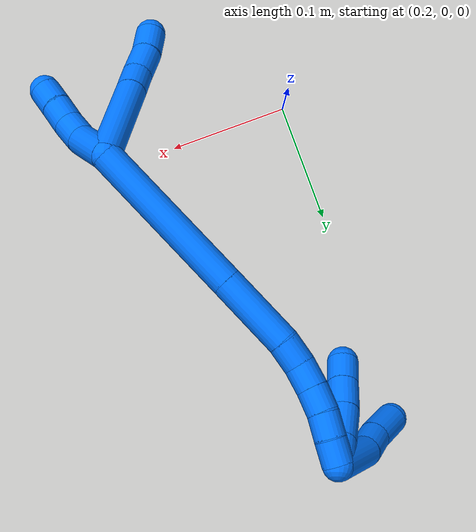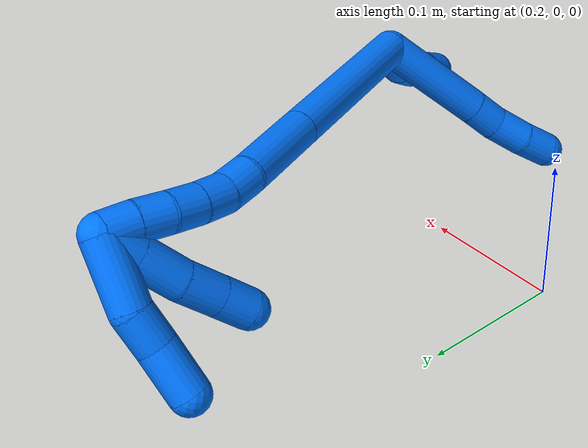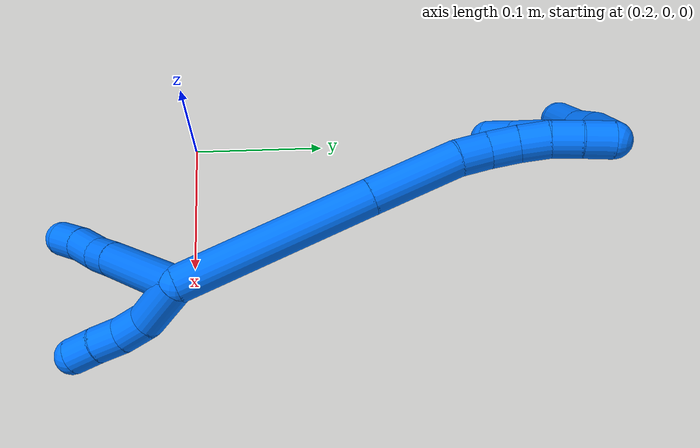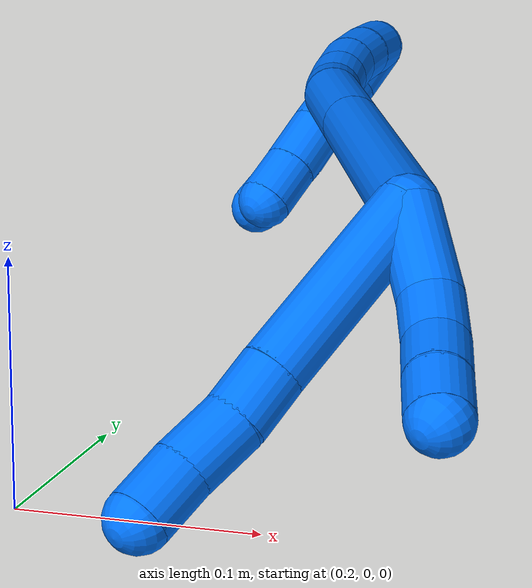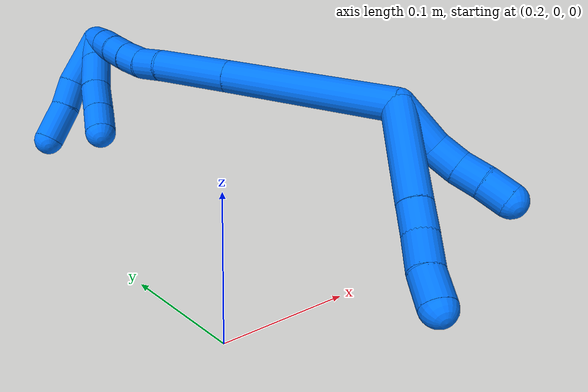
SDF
<sdf version="1.7">
 <world name="default">
  <model name="14">
   <static>0</static>
   <link name="14">
    <collision name="collision-cylinder-e_1_2_8">
     <pose>-0.000652 0.015382 -0.036229 -2.74008 -0.016557 0.08132</pose>
     <geometry><cylinder><radius>0.0125</radius><length>0.07873</length></cylinder></geometry>
     <surface>
      <friction><ode><mu>1.16</mu><mu2>1.16</mu2><slip1>0</slip1><slip2>0</slip2></ode></friction>
      <contact><ode><kp>1e+06</kp><kd>1</kd><max_vel>0</max_vel><min_depth>0.001</min_depth></ode></contact>
     </surface>
    </collision>
    <visual name="visual-cylinder-e_1_2_8">
     <pose>-0.000652 0.015382 -0.036229 -2.74008 -0.016557 0.08132</pose>
     <geometry><cylinder><radius>0.0125</radius><length>0.07873</length></cylinder></geometry>
     <material><ambient>0 0.462745 1 1</ambient></material>
    </visual>
    <collision name="collision-cylinder-e_2_8_9">
     <pose>-0.00117 0.035323 -0.08266 -2.72131 0.011963 -0.056073</pose>
     <geometry><cylinder><radius>0.0125</radius><length>0.022349</length></cylinder></geometry>
     <surface>
      <friction><ode><mu>1.16</mu><mu2>1.16</mu2><slip1>0</slip1><slip2>0</slip2></ode></friction>
      <contact><ode><kp>1e+06</kp><kd>1</kd><max_vel>0</max_vel><min_depth>0.001</min_depth></ode></contact>
     </surface>
    </collision>
    <visual name="visual-cylinder-e_2_8_9">
     <pose>-0.00117 0.035323 -0.08266 -2.72131 0.011963 -0.056073</pose>
     <geometry><cylinder><radius>0.0125</radius><length>0.022349</length></cylinder></geometry>
     <material><ambient>0 0.462745 1 1</ambient></material>
    </visual>
    <collision name="collision-cylinder-e_3_9_10">
     <pose>-0.002413 0.043852 -0.104938 -2.82401 -0.107861 0.650263</pose>
     <geometry><cylinder><radius>0.0125</radius><length>0.025575</length></cylinder></geometry>
     <surface>
      <friction><ode><mu>1.16</mu><mu2>1.16</mu2><slip1>0</slip1><slip2>0</slip2></ode></friction>
      <contact><ode><kp>1e+06</kp><kd>1</kd><max_vel>0</max_vel><min_depth>0.001</min_depth></ode></contact>
     </surface>
    </collision>
    <visual name="visual-cylinder-e_3_9_10">
     <pose>-0.002413 0.043852 -0.104938 -2.82401 -0.107861 0.650263</pose>
     <geometry><cylinder><radius>0.0125</radius><length>0.025575</length></cylinder></geometry>
     <material><ambient>0 0.462745 1 1</ambient></material>
    </visual>
    <collision name="collision-cylinder-e_4_10_6">
     <pose>-0.003559 0.050624 -0.128345 -2.89915 0.019749 -0.161769</pose>
     <geometry><cylinder><radius>0.0125</radius><length>0.023347</length></cylinder></geometry>
     <surface>
      <friction><ode><mu>1.16</mu><mu2>1.16</mu2><slip1>0</slip1><slip2>0</slip2></ode></friction>
      <contact><ode><kp>1e+06</kp><kd>1</kd><max_vel>0</max_vel><min_depth>0.001</min_depth></ode></contact>
     </surface>
    </collision>
    <visual name="visual-cylinder-e_4_10_6">
     <pose>-0.003559 0.050624 -0.128345 -2.89915 0.019749 -0.161769</pose>
     <geometry><cylinder><radius>0.0125</radius><length>0.023347</length></cylinder></geometry>
     <material><ambient>0 0.462745 1 1</ambient></material>
    </visual>
    <collision name="collision-cylinder-e_1_2_11">
     <pose>0.014148 0.006371 -0.01123 -2.62555 0.831059 -2.06352</pose>
     <geometry><cylinder><radius>0.0125</radius><length>0.038308</length></cylinder></geometry>
     <surface>
      <friction><ode><mu>1.16</mu><mu2>1.16</mu2><slip1>0</slip1><slip2>0</slip2></ode></friction>
      <contact><ode><kp>1e+06</kp><kd>1</kd><max_vel>0</max_vel><min_depth>0.001</min_depth></ode></contact>
     </surface>
    </collision>
    <visual name="visual-cylinder-e_1_2_11">
     <pose>0.014148 0.006371 -0.01123 -2.62555 0.831059 -2.06352</pose>
     <geometry><cylinder><radius>0.0125</radius><length>0.038308</length></cylinder></geometry>
     <material><ambient>0 0.462745 1 1</ambient></material>
    </visual>
    <collision name="collision-cylinder-e_2_11_12">
     <pose>0.035373 0.01351 -0.030574 -3.04724 0.715078 -2.89018</pose>
     <geometry><cylinder><radius>0.0125</radius><length>0.021586</length></cylinder></geometry>
     <surface>
      <friction><ode><mu>1.16</mu><mu2>1.16</mu2><slip1>0</slip1><slip2>0</slip2></ode></friction>
      <contact><ode><kp>1e+06</kp><kd>1</kd><max_vel>0</max_vel><min_depth>0.001</min_depth></ode></contact>
     </surface>
    </collision>
    <visual name="visual-cylinder-e_2_11_12">
     <pose>0.035373 0.01351 -0.030574 -3.04724 0.715078 -2.89018</pose>
     <geometry><cylinder><radius>0.0125</radius><length>0.021586</length></cylinder></geometry>
     <material><ambient>0 0.462745 1 1</ambient></material>
    </visual>
    <collision name="collision-cylinder-e_3_12_13">
     <pose>0.04832 0.013161 -0.046731 3.0036 0.625881 2.72079</pose>
     <geometry><cylinder><radius>0.0125</radius><length>0.020042</length></cylinder></geometry>
     <surface>
      <friction><ode><mu>1.16</mu><mu2>1.16</mu2><slip1>0</slip1><slip2>0</slip2></ode></friction>
      <contact><ode><kp>1e+06</kp><kd>1</kd><max_vel>0</max_vel><min_depth>0.001</min_depth></ode></contact>
     </surface>
    </collision>
    <visual name="visual-cylinder-e_3_12_13">
     <pose>0.04832 0.013161 -0.046731 3.0036 0.625881 2.72079</pose>
     <geometry><cylinder><radius>0.0125</radius><length>0.020042</length></cylinder></geometry>
     <material><ambient>0 0.462745 1 1</ambient></material>
    </visual>
    <collision name="collision-cylinder-e_4_13_5">
     <pose>0.060285 0.011749 -0.062738 3.10455 0.652877 3.03228</pose>
     <geometry><cylinder><radius>0.0125</radius><length>0.020063</length></cylinder></geometry>
     <surface>
      <friction><ode><mu>1.16</mu><mu2>1.16</mu2><slip1>0</slip1><slip2>0</slip2></ode></friction>
      <contact><ode><kp>1e+06</kp><kd>1</kd><max_vel>0</max_vel><min_depth>0.001</min_depth></ode></contact>
     </surface>
    </collision>
    <visual name="visual-cylinder-e_4_13_5">
     <pose>0.060285 0.011749 -0.062738 3.10455 0.652877 3.03228</pose>
     <geometry><cylinder><radius>0.0125</radius><length>0.020063</length></cylinder></geometry>
     <material><ambient>0 0.462745 1 1</ambient></material>
    </visual>
    <collision name="collision-cylinder-e_1_2_14">
     <pose>-0.042826 0.028292 0.044326 -0.568085 -0.683468 0.206935</pose>
     <geometry><cylinder><radius>0.0125</radius><length>0.135635</length></cylinder></geometry>
     <surface>
      <friction><ode><mu>1.16</mu><mu2>1.16</mu2><slip1>0</slip1><slip2>0</slip2></ode></friction>
      <contact><ode><kp>1e+06</kp><kd>1</kd><max_vel>0</max_vel><min_depth>0.001</min_depth></ode></contact>
     </surface>
    </collision>
    <visual name="visual-cylinder-e_1_2_14">
     <pose>-0.042826 0.028292 0.044326 -0.568085 -0.683468 0.206935</pose>
     <geometry><cylinder><radius>0.0125</radius><length>0.135635</length></cylinder></geometry>
     <material><ambient>0 0.462745 1 1</ambient></material>
    </visual>
    <collision name="collision-cylinder-e_2_14_15">
     <pose>-0.105209 0.069781 0.109069 -0.57382 -0.67744 0.207147</pose>
     <geometry><cylinder><radius>0.0125</radius><length>0.062404</length></cylinder></geometry>
     <surface>
      <friction><ode><mu>1.16</mu><mu2>1.16</mu2><slip1>0</slip1><slip2>0</slip2></ode></friction>
      <contact><ode><kp>1e+06</kp><kd>1</kd><max_vel>0</max_vel><min_depth>0.001</min_depth></ode></contact>
     </surface>
    </collision>
    <visual name="visual-cylinder-e_2_14_15">
     <pose>-0.105209 0.069781 0.109069 -0.57382 -0.67744 0.207147</pose>
     <geometry><cylinder><radius>0.0125</radius><length>0.062404</length></cylinder></geometry>
     <material><ambient>0 0.462745 1 1</ambient></material>
    </visual>
    <collision name="collision-cylinder-e_3_15_16">
     <pose>-0.13008 0.088203 0.13727 -0.5912 -0.515703 0.160274</pose>
     <geometry><cylinder><radius>0.0125</radius><length>0.02155</length></cylinder></geometry>
     <surface>
      <friction><ode><mu>1.16</mu><mu2>1.16</mu2><slip1>0</slip1><slip2>0</slip2></ode></friction>
      <contact><ode><kp>1e+06</kp><kd>1</kd><max_vel>0</max_vel><min_depth>0.001</min_depth></ode></contact>
     </surface>
    </collision>
    <visual name="visual-cylinder-e_3_15_16">
     <pose>-0.13008 0.088203 0.13727 -0.5912 -0.515703 0.160274</pose>
     <geometry><cylinder><radius>0.0125</radius><length>0.02155</length></cylinder></geometry>
     <material><ambient>0 0.462745 1 1</ambient></material>
    </visual>
    <collision name="collision-cylinder-e_4_16_17">
     <pose>-0.139867 0.096565 0.153533 -0.354341 -0.459399 0.083683</pose>
     <geometry><cylinder><radius>0.0125</radius><length>0.020176</length></cylinder></geometry>
     <surface>
      <friction><ode><mu>1.16</mu><mu2>1.16</mu2><slip1>0</slip1><slip2>0</slip2></ode></friction>
      <contact><ode><kp>1e+06</kp><kd>1</kd><max_vel>0</max_vel><min_depth>0.001</min_depth></ode></contact>
     </surface>
    </collision>
    <visual name="visual-cylinder-e_4_16_17">
     <pose>-0.139867 0.096565 0.153533 -0.354341 -0.459399 0.083683</pose>
     <geometry><cylinder><radius>0.0125</radius><length>0.020176</length></cylinder></geometry>
     <material><ambient>0 0.462745 1 1</ambient></material>
    </visual>
    <collision name="collision-cylinder-e_5_17_18">
     <pose>-0.148179 0.102375 0.170875 -0.292939 -0.393166 0.058744</pose>
     <geometry><cylinder><radius>0.0125</radius><length>0.020041</length></cylinder></geometry>
     <surface>
      <friction><ode><mu>1.16</mu><mu2>1.16</mu2><slip1>0</slip1><slip2>0</slip2></ode></friction>
      <contact><ode><kp>1e+06</kp><kd>1</kd><max_vel>0</max_vel><min_depth>0.001</min_depth></ode></contact>
     </surface>
    </collision>
    <visual name="visual-cylinder-e_5_17_18">
     <pose>-0.148179 0.102375 0.170875 -0.292939 -0.393166 0.058744</pose>
     <geometry><cylinder><radius>0.0125</radius><length>0.020041</length></cylinder></geometry>
     <material><ambient>0 0.462745 1 1</ambient></material>
    </visual>
    <collision name="collision-cylinder-e_6_18_19">
     <pose>-0.154437 0.108044 0.189064 -0.310756 -0.242085 0.038102</pose>
     <geometry><cylinder><radius>0.0125</radius><length>0.020184</length></cylinder></geometry>
     <surface>
      <friction><ode><mu>1.16</mu><mu2>1.16</mu2><slip1>0</slip1><slip2>0</slip2></ode></friction>
      <contact><ode><kp>1e+06</kp><kd>1</kd><max_vel>0</max_vel><min_depth>0.001</min_depth></ode></contact>
     </surface>
    </collision>
    <visual name="visual-cylinder-e_6_18_19">
     <pose>-0.154437 0.108044 0.189064 -0.310756 -0.242085 0.038102</pose>
     <geometry><cylinder><radius>0.0125</radius><length>0.020184</length></cylinder></geometry>
     <material><ambient>0 0.462745 1 1</ambient></material>
    </visual>
    <collision name="collision-cylinder-e_7_19_1">
     <pose>-0.159171 0.114854 0.207348 -0.402711 -0.233431 0.047857</pose>
     <geometry><cylinder><radius>0.0125</radius><length>0.02001</length></cylinder></geometry>
     <surface>
      <friction><ode><mu>1.16</mu><mu2>1.16</mu2><slip1>0</slip1><slip2>0</slip2></ode></friction>
      <contact><ode><kp>1e+06</kp><kd>1</kd><max_vel>0</max_vel><min_depth>0.001</min_depth></ode></contact>
     </surface>
    </collision>
    <visual name="visual-cylinder-e_7_19_1">
     <pose>-0.159171 0.114854 0.207348 -0.402711 -0.233431 0.047857</pose>
     <geometry><cylinder><radius>0.0125</radius><length>0.02001</length></cylinder></geometry>
     <material><ambient>0 0.462745 1 1</ambient></material>
    </visual>
    <collision name="collision-cylinder-e_1_1_20">
     <pose>-0.16077 0.123391 0.205938 -2.71415 0.062701 -0.287006</pose>
     <geometry><cylinder><radius>0.0125</radius><length>0.022824</length></cylinder></geometry>
     <surface>
      <friction><ode><mu>1.16</mu><mu2>1.16</mu2><slip1>0</slip1><slip2>0</slip2></ode></friction>
      <contact><ode><kp>1e+06</kp><kd>1</kd><max_vel>0</max_vel><min_depth>0.001</min_depth></ode></contact>
     </surface>
    </collision>
    <visual name="visual-cylinder-e_1_1_20">
     <pose>-0.16077 0.123391 0.205938 -2.71415 0.062701 -0.287006</pose>
     <geometry><cylinder><radius>0.0125</radius><length>0.022824</length></cylinder></geometry>
     <material><ambient>0 0.462745 1 1</ambient></material>
    </visual>
    <collision name="collision-cylinder-e_2_20_21">
     <pose>-0.159302 0.13414 0.181969 -2.7245 0.050545 -0.237765</pose>
     <geometry><cylinder><radius>0.0125</radius><length>0.029799</length></cylinder></geometry>
     <surface>
      <friction><ode><mu>1.16</mu><mu2>1.16</mu2><slip1>0</slip1><slip2>0</slip2></ode></friction>
      <contact><ode><kp>1e+06</kp><kd>1</kd><max_vel>0</max_vel><min_depth>0.001</min_depth></ode></contact>
     </surface>
    </collision>
    <visual name="visual-cylinder-e_2_20_21">
     <pose>-0.159302 0.13414 0.181969 -2.7245 0.050545 -0.237765</pose>
     <geometry><cylinder><radius>0.0125</radius><length>0.029799</length></cylinder></geometry>
     <material><ambient>0 0.462745 1 1</ambient></material>
    </visual>
    <collision name="collision-cylinder-e_3_21_22">
     <pose>-0.15689 0.144083 0.15645 -2.82414 0.131582 -0.780922</pose>
     <geometry><cylinder><radius>0.0125</radius><length>0.025299</length></cylinder></geometry>
     <surface>
      <friction><ode><mu>1.16</mu><mu2>1.16</mu2><slip1>0</slip1><slip2>0</slip2></ode></friction>
      <contact><ode><kp>1e+06</kp><kd>1</kd><max_vel>0</max_vel><min_depth>0.001</min_depth></ode></contact>
     </surface>
    </collision>
    <visual name="visual-cylinder-e_3_21_22">
     <pose>-0.15689 0.144083 0.15645 -2.82414 0.131582 -0.780922</pose>
     <geometry><cylinder><radius>0.0125</radius><length>0.025299</length></cylinder></geometry>
     <material><ambient>0 0.462745 1 1</ambient></material>
    </visual>
    <collision name="collision-cylinder-e_4_22_4">
     <pose>-0.154007 0.151433 0.134118 -2.82306 0.111056 -0.666295</pose>
     <geometry><cylinder><radius>0.0125</radius><length>0.022078</length></cylinder></geometry>
     <surface>
      <friction><ode><mu>1.16</mu><mu2>1.16</mu2><slip1>0</slip1><slip2>0</slip2></ode></friction>
      <contact><ode><kp>1e+06</kp><kd>1</kd><max_vel>0</max_vel><min_depth>0.001</min_depth></ode></contact>
     </surface>
    </collision>
    <visual name="visual-cylinder-e_4_22_4">
     <pose>-0.154007 0.151433 0.134118 -2.82306 0.111056 -0.666295</pose>
     <geometry><cylinder><radius>0.0125</radius><length>0.022078</length></cylinder></geometry>
     <material><ambient>0 0.462745 1 1</ambient></material>
    </visual>
    <collision name="collision-cylinder-e_1_1_23">
     <pose>-0.167068 0.137357 0.206206 -2.06614 -0.257031 0.426803</pose>
     <geometry><cylinder><radius>0.0125</radius><length>0.043926</length></cylinder></geometry>
     <surface>
      <friction><ode><mu>1.16</mu><mu2>1.16</mu2><slip1>0</slip1><slip2>0</slip2></ode></friction>
      <contact><ode><kp>1e+06</kp><kd>1</kd><max_vel>0</max_vel><min_depth>0.001</min_depth></ode></contact>
     </surface>
    </collision>
    <visual name="visual-cylinder-e_1_1_23">
     <pose>-0.167068 0.137357 0.206206 -2.06614 -0.257031 0.426803</pose>
     <geometry><cylinder><radius>0.0125</radius><length>0.043926</length></cylinder></geometry>
     <material><ambient>0 0.462745 1 1</ambient></material>
    </visual>
    <collision name="collision-cylinder-e_2_23_24">
     <pose>-0.17392 0.164614 0.188061 -2.32497 -0.107497 0.247444</pose>
     <geometry><cylinder><radius>0.0125</radius><length>0.023648</length></cylinder></geometry>
     <surface>
      <friction><ode><mu>1.16</mu><mu2>1.16</mu2><slip1>0</slip1><slip2>0</slip2></ode></friction>
      <contact><ode><kp>1e+06</kp><kd>1</kd><max_vel>0</max_vel><min_depth>0.001</min_depth></ode></contact>
     </surface>
    </collision>
    <visual name="visual-cylinder-e_2_23_24">
     <pose>-0.17392 0.164614 0.188061 -2.32497 -0.107497 0.247444</pose>
     <geometry><cylinder><radius>0.0125</radius><length>0.023648</length></cylinder></geometry>
     <material><ambient>0 0.462745 1 1</ambient></material>
    </visual>
    <collision name="collision-cylinder-e_3_24_3">
     <pose>-0.179271 0.184914 0.169593 -2.29695 -0.254511 0.554783</pose>
     <geometry><cylinder><radius>0.0125</radius><length>0.032426</length></cylinder></geometry>
     <surface>
      <friction><ode><mu>1.16</mu><mu2>1.16</mu2><slip1>0</slip1><slip2>0</slip2></ode></friction>
      <contact><ode><kp>1e+06</kp><kd>1</kd><max_vel>0</max_vel><min_depth>0.001</min_depth></ode></contact>
     </surface>
    </collision>
    <visual name="visual-cylinder-e_3_24_3">
     <pose>-0.179271 0.184914 0.169593 -2.29695 -0.254511 0.554783</pose>
     <geometry><cylinder><radius>0.0125</radius><length>0.032426</length></cylinder></geometry>
     <material><ambient>0 0.462745 1 1</ambient></material>
    </visual>
    <collision name="collision-sphere-3">
     <pose>-0.183353 0.196647 0.159174 0 -0 0</pose>
     <geometry><sphere><radius>0.0125</radius></sphere></geometry>
     <surface>
      <friction><ode><mu>1.16</mu><mu2>1.16</mu2><slip1>0</slip1><slip2>0</slip2></ode></friction>
      <contact><ode><kp>1e+06</kp><kd>1</kd><max_vel>0</max_vel><min_depth>0.001</min_depth></ode></contact>
     </surface>
    </collision>
    <visual name="visual-sphere-3">
     <pose>-0.183353 0.196647 0.159174 0 -0 0</pose>
     <geometry><sphere><radius>0.0125</radius></sphere></geometry>
     <material><ambient>0 0.462745 1 1</ambient></material>
    </visual>
    <collision name="collision-sphere-24">
     <pose>-0.175189 0.173182 0.180012 0 -0 0</pose>
     <geometry><sphere><radius>0.0125</radius></sphere></geometry>
     <surface>
      <friction><ode><mu>1.16</mu><mu2>1.16</mu2><slip1>0</slip1><slip2>0</slip2></ode></friction>
      <contact><ode><kp>1e+06</kp><kd>1</kd><max_vel>0</max_vel><min_depth>0.001</min_depth></ode></contact>
     </surface>
    </collision>
    <visual name="visual-sphere-24">
     <pose>-0.175189 0.173182 0.180012 0 -0 0</pose>
     <geometry><sphere><radius>0.0125</radius></sphere></geometry>
     <material><ambient>0 0.462745 1 1</ambient></material>
    </visual>
    <collision name="collision-sphere-23">
     <pose>-0.172652 0.156046 0.19611 0 -0 0</pose>
     <geometry><sphere><radius>0.0125</radius></sphere></geometry>
     <surface>
      <friction><ode><mu>1.16</mu><mu2>1.16</mu2><slip1>0</slip1><slip2>0</slip2></ode></friction>
      <contact><ode><kp>1e+06</kp><kd>1</kd><max_vel>0</max_vel><min_depth>0.001</min_depth></ode></contact>
     </surface>
    </collision>
    <visual name="visual-sphere-23">
     <pose>-0.172652 0.156046 0.19611 0 -0 0</pose>
     <geometry><sphere><radius>0.0125</radius></sphere></geometry>
     <material><ambient>0 0.462745 1 1</ambient></material>
    </visual>
    <collision name="collision-sphere-4">
     <pose>-0.152783 0.154869 0.123699 0 -0 0</pose>
     <geometry><sphere><radius>0.0125</radius></sphere></geometry>
     <surface>
      <friction><ode><mu>1.16</mu><mu2>1.16</mu2><slip1>0</slip1><slip2>0</slip2></ode></friction>
      <contact><ode><kp>1e+06</kp><kd>1</kd><max_vel>0</max_vel><min_depth>0.001</min_depth></ode></contact>
     </surface>
    </collision>
    <visual name="visual-sphere-4">
     <pose>-0.152783 0.154869 0.123699 0 -0 0</pose>
     <geometry><sphere><radius>0.0125</radius></sphere></geometry>
     <material><ambient>0 0.462745 1 1</ambient></material>
    </visual>
    <collision name="collision-sphere-22">
     <pose>-0.15523 0.147997 0.144537 0 -0 0</pose>
     <geometry><sphere><radius>0.0125</radius></sphere></geometry>
     <surface>
      <friction><ode><mu>1.16</mu><mu2>1.16</mu2><slip1>0</slip1><slip2>0</slip2></ode></friction>
      <contact><ode><kp>1e+06</kp><kd>1</kd><max_vel>0</max_vel><min_depth>0.001</min_depth></ode></contact>
     </surface>
    </collision>
    <visual name="visual-sphere-22">
     <pose>-0.15523 0.147997 0.144537 0 -0 0</pose>
     <geometry><sphere><radius>0.0125</radius></sphere></geometry>
     <material><ambient>0 0.462745 1 1</ambient></material>
    </visual>
    <collision name="collision-sphere-21">
     <pose>-0.15855 0.140169 0.168364 0 -0 0</pose>
     <geometry><sphere><radius>0.0125</radius></sphere></geometry>
     <surface>
      <friction><ode><mu>1.16</mu><mu2>1.16</mu2><slip1>0</slip1><slip2>0</slip2></ode></friction>
      <contact><ode><kp>1e+06</kp><kd>1</kd><max_vel>0</max_vel><min_depth>0.001</min_depth></ode></contact>
     </surface>
    </collision>
    <visual name="visual-sphere-21">
     <pose>-0.15855 0.140169 0.168364 0 -0 0</pose>
     <geometry><sphere><radius>0.0125</radius></sphere></geometry>
     <material><ambient>0 0.462745 1 1</ambient></material>
    </visual>
    <collision name="collision-sphere-20">
     <pose>-0.160055 0.128112 0.195574 0 -0 0</pose>
     <geometry><sphere><radius>0.0125</radius></sphere></geometry>
     <surface>
      <friction><ode><mu>1.16</mu><mu2>1.16</mu2><slip1>0</slip1><slip2>0</slip2></ode></friction>
      <contact><ode><kp>1e+06</kp><kd>1</kd><max_vel>0</max_vel><min_depth>0.001</min_depth></ode></contact>
     </surface>
    </collision>
    <visual name="visual-sphere-20">
     <pose>-0.160055 0.128112 0.195574 0 -0 0</pose>
     <geometry><sphere><radius>0.0125</radius></sphere></geometry>
     <material><ambient>0 0.462745 1 1</ambient></material>
    </visual>
    <collision name="collision-sphere-11">
     <pose>0.028296 0.012742 -0.022461 0 -0 0</pose>
     <geometry><sphere><radius>0.0125</radius></sphere></geometry>
     <surface>
      <friction><ode><mu>1.16</mu><mu2>1.16</mu2><slip1>0</slip1><slip2>0</slip2></ode></friction>
      <contact><ode><kp>1e+06</kp><kd>1</kd><max_vel>0</max_vel><min_depth>0.001</min_depth></ode></contact>
     </surface>
    </collision>
    <visual name="visual-sphere-11">
     <pose>0.028296 0.012742 -0.022461 0 -0 0</pose>
     <geometry><sphere><radius>0.0125</radius></sphere></geometry>
     <material><ambient>0 0.462745 1 1</ambient></material>
    </visual>
    <collision name="collision-sphere-6">
     <pose>-0.003328 0.053426 -0.139675 0 -0 0</pose>
     <geometry><sphere><radius>0.0125</radius></sphere></geometry>
     <surface>
      <friction><ode><mu>1.16</mu><mu2>1.16</mu2><slip1>0</slip1><slip2>0</slip2></ode></friction>
      <contact><ode><kp>1e+06</kp><kd>1</kd><max_vel>0</max_vel><min_depth>0.001</min_depth></ode></contact>
     </surface>
    </collision>
    <visual name="visual-sphere-6">
     <pose>-0.003328 0.053426 -0.139675 0 -0 0</pose>
     <geometry><sphere><radius>0.0125</radius></sphere></geometry>
     <material><ambient>0 0.462745 1 1</ambient></material>
    </visual>
    <collision name="collision-sphere-10">
     <pose>-0.003789 0.047822 -0.117016 0 -0 0</pose>
     <geometry><sphere><radius>0.0125</radius></sphere></geometry>
     <surface>
      <friction><ode><mu>1.16</mu><mu2>1.16</mu2><slip1>0</slip1><slip2>0</slip2></ode></friction>
      <contact><ode><kp>1e+06</kp><kd>1</kd><max_vel>0</max_vel><min_depth>0.001</min_depth></ode></contact>
     </surface>
    </collision>
    <visual name="visual-sphere-10">
     <pose>-0.003789 0.047822 -0.117016 0 -0 0</pose>
     <geometry><sphere><radius>0.0125</radius></sphere></geometry>
     <material><ambient>0 0.462745 1 1</ambient></material>
    </visual>
    <collision name="collision-sphere-9">
     <pose>-0.001036 0.039882 -0.092861 0 -0 0</pose>
     <geometry><sphere><radius>0.0125</radius></sphere></geometry>
     <surface>
      <friction><ode><mu>1.16</mu><mu2>1.16</mu2><slip1>0</slip1><slip2>0</slip2></ode></friction>
      <contact><ode><kp>1e+06</kp><kd>1</kd><max_vel>0</max_vel><min_depth>0.001</min_depth></ode></contact>
     </surface>
    </collision>
    <visual name="visual-sphere-9">
     <pose>-0.001036 0.039882 -0.092861 0 -0 0</pose>
     <geometry><sphere><radius>0.0125</radius></sphere></geometry>
     <material><ambient>0 0.462745 1 1</ambient></material>
    </visual>
    <collision name="collision-sphere-2">
     <geometry><sphere><radius>0.0125</radius></sphere></geometry>
     <surface>
      <friction><ode><mu>1.16</mu><mu2>1.16</mu2><slip1>0</slip1><slip2>0</slip2></ode></friction>
      <contact><ode><kp>1e+06</kp><kd>1</kd><max_vel>0</max_vel><min_depth>0.001</min_depth></ode></contact>
     </surface>
    </collision>
    <visual name="visual-sphere-2">
     <geometry><sphere><radius>0.0125</radius></sphere></geometry>
     <material><ambient>0 0.462745 1 1</ambient></material>
    </visual>
    <collision name="collision-sphere-19">
     <pose>-0.156856 0.111039 0.198393 0 -0 0</pose>
     <geometry><sphere><radius>0.0125</radius></sphere></geometry>
     <surface>
      <friction><ode><mu>1.16</mu><mu2>1.16</mu2><slip1>0</slip1><slip2>0</slip2></ode></friction>
      <contact><ode><kp>1e+06</kp><kd>1</kd><max_vel>0</max_vel><min_depth>0.001</min_depth></ode></contact>
     </surface>
    </collision>
    <visual name="visual-sphere-19">
     <pose>-0.156856 0.111039 0.198393 0 -0 0</pose>
     <geometry><sphere><radius>0.0125</radius></sphere></geometry>
     <material><ambient>0 0.462745 1 1</ambient></material>
    </visual>
    <collision name="collision-sphere-8">
     <pose>-0.001303 0.030764 -0.072459 0 -0 0</pose>
     <geometry><sphere><radius>0.0125</radius></sphere></geometry>
     <surface>
      <friction><ode><mu>1.16</mu><mu2>1.16</mu2><slip1>0</slip1><slip2>0</slip2></ode></friction>
      <contact><ode><kp>1e+06</kp><kd>1</kd><max_vel>0</max_vel><min_depth>0.001</min_depth></ode></contact>
     </surface>
    </collision>
    <visual name="visual-sphere-8">
     <pose>-0.001303 0.030764 -0.072459 0 -0 0</pose>
     <geometry><sphere><radius>0.0125</radius></sphere></geometry>
     <material><ambient>0 0.462745 1 1</ambient></material>
    </visual>
    <collision name="collision-sphere-12">
     <pose>0.04245 0.014278 -0.038687 0 -0 0</pose>
     <geometry><sphere><radius>0.0125</radius></sphere></geometry>
     <surface>
      <friction><ode><mu>1.16</mu><mu2>1.16</mu2><slip1>0</slip1><slip2>0</slip2></ode></friction>
      <contact><ode><kp>1e+06</kp><kd>1</kd><max_vel>0</max_vel><min_depth>0.001</min_depth></ode></contact>
     </surface>
    </collision>
    <visual name="visual-sphere-12">
     <pose>0.04245 0.014278 -0.038687 0 -0 0</pose>
     <geometry><sphere><radius>0.0125</radius></sphere></geometry>
     <material><ambient>0 0.462745 1 1</ambient></material>
    </visual>
    <collision name="collision-sphere-13">
     <pose>0.054191 0.012044 -0.054775 0 -0 0</pose>
     <geometry><sphere><radius>0.0125</radius></sphere></geometry>
     <surface>
      <friction><ode><mu>1.16</mu><mu2>1.16</mu2><slip1>0</slip1><slip2>0</slip2></ode></friction>
      <contact><ode><kp>1e+06</kp><kd>1</kd><max_vel>0</max_vel><min_depth>0.001</min_depth></ode></contact>
     </surface>
    </collision>
    <visual name="visual-sphere-13">
     <pose>0.054191 0.012044 -0.054775 0 -0 0</pose>
     <geometry><sphere><radius>0.0125</radius></sphere></geometry>
     <material><ambient>0 0.462745 1 1</ambient></material>
    </visual>
    <collision name="collision-sphere-5">
     <pose>0.066379 0.011453 -0.070702 0 -0 0</pose>
     <geometry><sphere><radius>0.0125</radius></sphere></geometry>
     <surface>
      <friction><ode><mu>1.16</mu><mu2>1.16</mu2><slip1>0</slip1><slip2>0</slip2></ode></friction>
      <contact><ode><kp>1e+06</kp><kd>1</kd><max_vel>0</max_vel><min_depth>0.001</min_depth></ode></contact>
     </surface>
    </collision>
    <visual name="visual-sphere-5">
     <pose>0.066379 0.011453 -0.070702 0 -0 0</pose>
     <geometry><sphere><radius>0.0125</radius></sphere></geometry>
     <material><ambient>0 0.462745 1 1</ambient></material>
    </visual>
    <collision name="collision-sphere-14">
     <pose>-0.085652 0.056583 0.088651 0 -0 0</pose>
     <geometry><sphere><radius>0.0125</radius></sphere></geometry>
     <surface>
      <friction><ode><mu>1.16</mu><mu2>1.16</mu2><slip1>0</slip1><slip2>0</slip2></ode></friction>
      <contact><ode><kp>1e+06</kp><kd>1</kd><max_vel>0</max_vel><min_depth>0.001</min_depth></ode></contact>
     </surface>
    </collision>
    <visual name="visual-sphere-14">
     <pose>-0.085652 0.056583 0.088651 0 -0 0</pose>
     <geometry><sphere><radius>0.0125</radius></sphere></geometry>
     <material><ambient>0 0.462745 1 1</ambient></material>
    </visual>
    <collision name="collision-sphere-15">
     <pose>-0.124767 0.082979 0.129487 0 -0 0</pose>
     <geometry><sphere><radius>0.0125</radius></sphere></geometry>
     <surface>
      <friction><ode><mu>1.16</mu><mu2>1.16</mu2><slip1>0</slip1><slip2>0</slip2></ode></friction>
      <contact><ode><kp>1e+06</kp><kd>1</kd><max_vel>0</max_vel><min_depth>0.001</min_depth></ode></contact>
     </surface>
    </collision>
    <visual name="visual-sphere-15">
     <pose>-0.124767 0.082979 0.129487 0 -0 0</pose>
     <geometry><sphere><radius>0.0125</radius></sphere></geometry>
     <material><ambient>0 0.462745 1 1</ambient></material>
    </visual>
    <collision name="collision-sphere-16">
     <pose>-0.135394 0.093427 0.145052 0 -0 0</pose>
     <geometry><sphere><radius>0.0125</radius></sphere></geometry>
     <surface>
      <friction><ode><mu>1.16</mu><mu2>1.16</mu2><slip1>0</slip1><slip2>0</slip2></ode></friction>
      <contact><ode><kp>1e+06</kp><kd>1</kd><max_vel>0</max_vel><min_depth>0.001</min_depth></ode></contact>
     </surface>
    </collision>
    <visual name="visual-sphere-16">
     <pose>-0.135394 0.093427 0.145052 0 -0 0</pose>
     <geometry><sphere><radius>0.0125</radius></sphere></geometry>
     <material><ambient>0 0.462745 1 1</ambient></material>
    </visual>
    <collision name="collision-sphere-17">
     <pose>-0.14434 0.099702 0.162013 0 -0 0</pose>
     <geometry><sphere><radius>0.0125</radius></sphere></geometry>
     <surface>
      <friction><ode><mu>1.16</mu><mu2>1.16</mu2><slip1>0</slip1><slip2>0</slip2></ode></friction>
      <contact><ode><kp>1e+06</kp><kd>1</kd><max_vel>0</max_vel><min_depth>0.001</min_depth></ode></contact>
     </surface>
    </collision>
    <visual name="visual-sphere-17">
     <pose>-0.14434 0.099702 0.162013 0 -0 0</pose>
     <geometry><sphere><radius>0.0125</radius></sphere></geometry>
     <material><ambient>0 0.462745 1 1</ambient></material>
    </visual>
    <collision name="collision-sphere-18">
     <pose>-0.152018 0.105048 0.179736 0 -0 0</pose>
     <geometry><sphere><radius>0.0125</radius></sphere></geometry>
     <surface>
      <friction><ode><mu>1.16</mu><mu2>1.16</mu2><slip1>0</slip1><slip2>0</slip2></ode></friction>
      <contact><ode><kp>1e+06</kp><kd>1</kd><max_vel>0</max_vel><min_depth>0.001</min_depth></ode></contact>
     </surface>
    </collision>
    <visual name="visual-sphere-18">
     <pose>-0.152018 0.105048 0.179736 0 -0 0</pose>
     <geometry><sphere><radius>0.0125</radius></sphere></geometry>
     <material><ambient>0 0.462745 1 1</ambient></material>
    </visual>
    <collision name="collision-sphere-1">
     <pose>-0.161485 0.118669 0.216303 0 -0 0</pose>
     <geometry><sphere><radius>0.0125</radius></sphere></geometry>
     <surface>
      <friction><ode><mu>1.16</mu><mu2>1.16</mu2><slip1>0</slip1><slip2>0</slip2></ode></friction>
      <contact><ode><kp>1e+06</kp><kd>1</kd><max_vel>0</max_vel><min_depth>0.001</min_depth></ode></contact>
     </surface>
    </collision>
    <visual name="visual-sphere-1">
     <pose>-0.161485 0.118669 0.216303 0 -0 0</pose>
     <geometry><sphere><radius>0.0125</radius></sphere></geometry>
     <material><ambient>0 0.462745 1 1</ambient></material>
    </visual>
    <inertial>
     <pose>-0.07608 0.071514 0.070193 0 -0 0</pose>
     <mass>0.75</mass>
     <inertia><ixx>0.000284</ixx><ixy>0</ixy><ixz>0</ixz><iyy>0.000233</iyy><iyz>0</iyz><izz>-1e-06</izz></inertia>
    </inertial>
   </link>
   <pose>0.353401 0.003795 0.127935 -1.22263 0.335399 -0.307185</pose>
  </model>
 </world>
</sdf>
